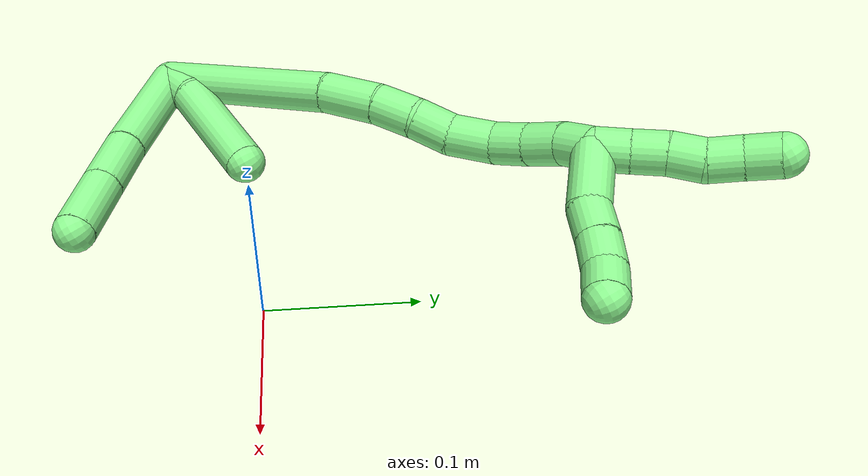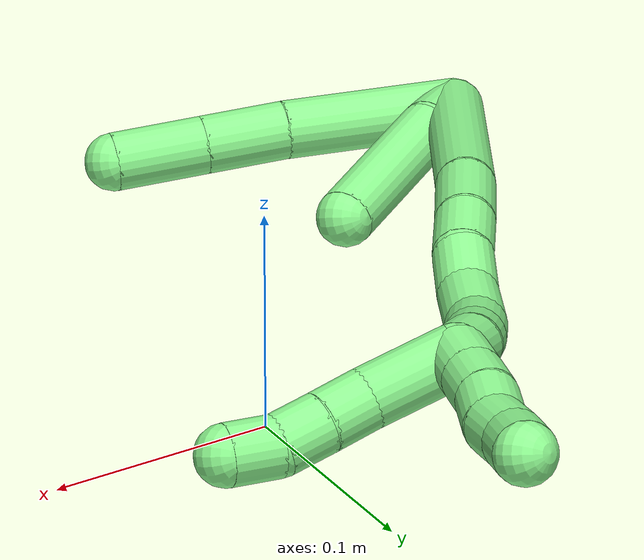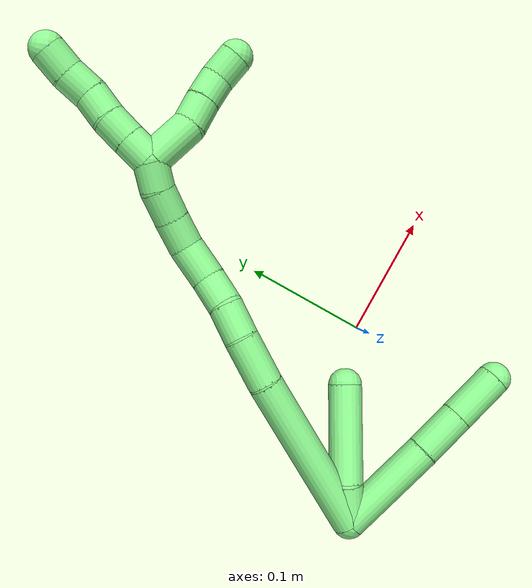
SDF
<sdf version="1.7">
 <world name="default">
  <model name="13">
   <static>0</static>
   <link name="13">
    <collision name="collision-cylinder-e_1_2_8">
     <pose>0.028145 0.013189 -0.020993 -2.58065 0.848641 -2.00632</pose>
     <geometry><cylinder><radius>0.0125</radius><length>0.075014</length></cylinder></geometry>
     <surface>
      <friction><ode><mu>1.16</mu><mu2>1.16</mu2><slip1>0</slip1><slip2>0</slip2></ode></friction>
      <contact><ode><kp>1e+06</kp><kd>1</kd><max_vel>0</max_vel><min_depth>0.001</min_depth></ode></contact>
     </surface>
    </collision>
    <visual name="visual-cylinder-e_1_2_8">
     <pose>0.028145 0.013189 -0.020993 -2.58065 0.848641 -2.00632</pose>
     <geometry><cylinder><radius>0.0125</radius><length>0.075014</length></cylinder></geometry>
     <material><ambient>0.564706 0.984314 0.572549 1</ambient></material>
    </visual>
    <collision name="collision-cylinder-e_2_8_9">
     <pose>0.069249 0.033447 -0.051996 -2.52669 0.813387 -1.87106</pose>
     <geometry><cylinder><radius>0.0125</radius><length>0.035672</length></cylinder></geometry>
     <surface>
      <friction><ode><mu>1.16</mu><mu2>1.16</mu2><slip1>0</slip1><slip2>0</slip2></ode></friction>
      <contact><ode><kp>1e+06</kp><kd>1</kd><max_vel>0</max_vel><min_depth>0.001</min_depth></ode></contact>
     </surface>
    </collision>
    <visual name="visual-cylinder-e_2_8_9">
     <pose>0.069249 0.033447 -0.051996 -2.52669 0.813387 -1.87106</pose>
     <geometry><cylinder><radius>0.0125</radius><length>0.035672</length></cylinder></geometry>
     <material><ambient>0.564706 0.984314 0.572549 1</ambient></material>
    </visual>
    <collision name="collision-cylinder-e_3_9_6">
     <pose>0.096479 0.048328 -0.073039 -2.52556 0.812407 -1.8679</pose>
     <geometry><cylinder><radius>0.0125</radius><length>0.039314</length></cylinder></geometry>
     <surface>
      <friction><ode><mu>1.16</mu><mu2>1.16</mu2><slip1>0</slip1><slip2>0</slip2></ode></friction>
      <contact><ode><kp>1e+06</kp><kd>1</kd><max_vel>0</max_vel><min_depth>0.001</min_depth></ode></contact>
     </surface>
    </collision>
    <visual name="visual-cylinder-e_3_9_6">
     <pose>0.096479 0.048328 -0.073039 -2.52556 0.812407 -1.8679</pose>
     <geometry><cylinder><radius>0.0125</radius><length>0.039314</length></cylinder></geometry>
     <material><ambient>0.564706 0.984314 0.572549 1</ambient></material>
    </visual>
    <collision name="collision-cylinder-e_1_2_10">
     <pose>0.010606 0.008301 0.003814 -1.14015 0.859779 -0.571748</pose>
     <geometry><cylinder><radius>0.0125</radius><length>0.027996</length></cylinder></geometry>
     <surface>
      <friction><ode><mu>1.16</mu><mu2>1.16</mu2><slip1>0</slip1><slip2>0</slip2></ode></friction>
      <contact><ode><kp>1e+06</kp><kd>1</kd><max_vel>0</max_vel><min_depth>0.001</min_depth></ode></contact>
     </surface>
    </collision>
    <visual name="visual-cylinder-e_1_2_10">
     <pose>0.010606 0.008301 0.003814 -1.14015 0.859779 -0.571748</pose>
     <geometry><cylinder><radius>0.0125</radius><length>0.027996</length></cylinder></geometry>
     <material><ambient>0.564706 0.984314 0.572549 1</ambient></material>
    </visual>
    <collision name="collision-cylinder-e_2_10_5">
     <pose>0.044915 0.043313 0.012195 -1.40142 0.718637 -0.613672</pose>
     <geometry><cylinder><radius>0.0125</radius><length>0.072004</length></cylinder></geometry>
     <surface>
      <friction><ode><mu>1.16</mu><mu2>1.16</mu2><slip1>0</slip1><slip2>0</slip2></ode></friction>
      <contact><ode><kp>1e+06</kp><kd>1</kd><max_vel>0</max_vel><min_depth>0.001</min_depth></ode></contact>
     </surface>
    </collision>
    <visual name="visual-cylinder-e_2_10_5">
     <pose>0.044915 0.043313 0.012195 -1.40142 0.718637 -0.613672</pose>
     <geometry><cylinder><radius>0.0125</radius><length>0.072004</length></cylinder></geometry>
     <material><ambient>0.564706 0.984314 0.572549 1</ambient></material>
    </visual>
    <collision name="collision-cylinder-e_1_2_11">
     <pose>0.034555 0.02901 0.04099 -0.615894 0.602707 -0.197082</pose>
     <geometry><cylinder><radius>0.0125</radius><length>0.121915</length></cylinder></geometry>
     <surface>
      <friction><ode><mu>1.16</mu><mu2>1.16</mu2><slip1>0</slip1><slip2>0</slip2></ode></friction>
      <contact><ode><kp>1e+06</kp><kd>1</kd><max_vel>0</max_vel><min_depth>0.001</min_depth></ode></contact>
     </surface>
    </collision>
    <visual name="visual-cylinder-e_1_2_11">
     <pose>0.034555 0.02901 0.04099 -0.615894 0.602707 -0.197082</pose>
     <geometry><cylinder><radius>0.0125</radius><length>0.121915</length></cylinder></geometry>
     <material><ambient>0.564706 0.984314 0.572549 1</ambient></material>
    </visual>
    <collision name="collision-cylinder-e_2_11_12">
     <pose>0.078873 0.068656 0.093052 -0.765338 0.566367 -0.233202</pose>
     <geometry><cylinder><radius>0.0125</radius><length>0.036388</length></cylinder></geometry>
     <surface>
      <friction><ode><mu>1.16</mu><mu2>1.16</mu2><slip1>0</slip1><slip2>0</slip2></ode></friction>
      <contact><ode><kp>1e+06</kp><kd>1</kd><max_vel>0</max_vel><min_depth>0.001</min_depth></ode></contact>
     </surface>
    </collision>
    <visual name="visual-cylinder-e_2_11_12">
     <pose>0.078873 0.068656 0.093052 -0.765338 0.566367 -0.233202</pose>
     <geometry><cylinder><radius>0.0125</radius><length>0.036388</length></cylinder></geometry>
     <material><ambient>0.564706 0.984314 0.572549 1</ambient></material>
    </visual>
    <collision name="collision-cylinder-e_3_12_13">
     <pose>0.094697 0.088168 0.111058 -0.90759 0.493736 -0.244605</pose>
     <geometry><cylinder><radius>0.0125</radius><length>0.025581</length></cylinder></geometry>
     <surface>
      <friction><ode><mu>1.16</mu><mu2>1.16</mu2><slip1>0</slip1><slip2>0</slip2></ode></friction>
      <contact><ode><kp>1e+06</kp><kd>1</kd><max_vel>0</max_vel><min_depth>0.001</min_depth></ode></contact>
     </surface>
    </collision>
    <visual name="visual-cylinder-e_3_12_13">
     <pose>0.094697 0.088168 0.111058 -0.90759 0.493736 -0.244605</pose>
     <geometry><cylinder><radius>0.0125</radius><length>0.025581</length></cylinder></geometry>
     <material><ambient>0.564706 0.984314 0.572549 1</ambient></material>
    </visual>
    <collision name="collision-cylinder-e_4_13_14">
     <pose>0.103919 0.10618 0.124352 -0.962661 0.276644 -0.145165</pose>
     <geometry><cylinder><radius>0.0125</radius><length>0.023144</length></cylinder></geometry>
     <surface>
      <friction><ode><mu>1.16</mu><mu2>1.16</mu2><slip1>0</slip1><slip2>0</slip2></ode></friction>
      <contact><ode><kp>1e+06</kp><kd>1</kd><max_vel>0</max_vel><min_depth>0.001</min_depth></ode></contact>
     </surface>
    </collision>
    <visual name="visual-cylinder-e_4_13_14">
     <pose>0.103919 0.10618 0.124352 -0.962661 0.276644 -0.145165</pose>
     <geometry><cylinder><radius>0.0125</radius><length>0.023144</length></cylinder></geometry>
     <material><ambient>0.564706 0.984314 0.572549 1</ambient></material>
    </visual>
    <collision name="collision-cylinder-e_5_14_15">
     <pose>0.113147 0.123526 0.140213 -0.712671 0.450107 -0.170018</pose>
     <geometry><cylinder><radius>0.0125</radius><length>0.027892</length></cylinder></geometry>
     <surface>
      <friction><ode><mu>1.16</mu><mu2>1.16</mu2><slip1>0</slip1><slip2>0</slip2></ode></friction>
      <contact><ode><kp>1e+06</kp><kd>1</kd><max_vel>0</max_vel><min_depth>0.001</min_depth></ode></contact>
     </surface>
    </collision>
    <visual name="visual-cylinder-e_5_14_15">
     <pose>0.113147 0.123526 0.140213 -0.712671 0.450107 -0.170018</pose>
     <geometry><cylinder><radius>0.0125</radius><length>0.027892</length></cylinder></geometry>
     <material><ambient>0.564706 0.984314 0.572549 1</ambient></material>
    </visual>
    <collision name="collision-cylinder-e_6_15_16">
     <pose>0.126591 0.136205 0.156906 -0.555888 0.716665 -0.212904</pose>
     <geometry><cylinder><radius>0.0125</radius><length>0.022459</length></cylinder></geometry>
     <surface>
      <friction><ode><mu>1.16</mu><mu2>1.16</mu2><slip1>0</slip1><slip2>0</slip2></ode></friction>
      <contact><ode><kp>1e+06</kp><kd>1</kd><max_vel>0</max_vel><min_depth>0.001</min_depth></ode></contact>
     </surface>
    </collision>
    <visual name="visual-cylinder-e_6_15_16">
     <pose>0.126591 0.136205 0.156906 -0.555888 0.716665 -0.212904</pose>
     <geometry><cylinder><radius>0.0125</radius><length>0.022459</length></cylinder></geometry>
     <material><ambient>0.564706 0.984314 0.572549 1</ambient></material>
    </visual>
    <collision name="collision-cylinder-e_7_16_17">
     <pose>0.142012 0.144309 0.171097 -0.479129 0.795228 -0.204451</pose>
     <geometry><cylinder><radius>0.0125</radius><length>0.022532</length></cylinder></geometry>
     <surface>
      <friction><ode><mu>1.16</mu><mu2>1.16</mu2><slip1>0</slip1><slip2>0</slip2></ode></friction>
      <contact><ode><kp>1e+06</kp><kd>1</kd><max_vel>0</max_vel><min_depth>0.001</min_depth></ode></contact>
     </surface>
    </collision>
    <visual name="visual-cylinder-e_7_16_17">
     <pose>0.142012 0.144309 0.171097 -0.479129 0.795228 -0.204451</pose>
     <geometry><cylinder><radius>0.0125</radius><length>0.022532</length></cylinder></geometry>
     <material><ambient>0.564706 0.984314 0.572549 1</ambient></material>
    </visual>
    <collision name="collision-cylinder-e_8_17_1">
     <pose>0.158031 0.152086 0.182584 -0.745299 0.917361 -0.381381</pose>
     <geometry><cylinder><radius>0.0125</radius><length>0.020089</length></cylinder></geometry>
     <surface>
      <friction><ode><mu>1.16</mu><mu2>1.16</mu2><slip1>0</slip1><slip2>0</slip2></ode></friction>
      <contact><ode><kp>1e+06</kp><kd>1</kd><max_vel>0</max_vel><min_depth>0.001</min_depth></ode></contact>
     </surface>
    </collision>
    <visual name="visual-cylinder-e_8_17_1">
     <pose>0.158031 0.152086 0.182584 -0.745299 0.917361 -0.381381</pose>
     <geometry><cylinder><radius>0.0125</radius><length>0.020089</length></cylinder></geometry>
     <material><ambient>0.564706 0.984314 0.572549 1</ambient></material>
    </visual>
    <collision name="collision-cylinder-e_1_1_18">
     <pose>0.169013 0.161484 0.19503 -0.583714 0.305405 -0.092409</pose>
     <geometry><cylinder><radius>0.0125</radius><length>0.02</length></cylinder></geometry>
     <surface>
      <friction><ode><mu>1.16</mu><mu2>1.16</mu2><slip1>0</slip1><slip2>0</slip2></ode></friction>
      <contact><ode><kp>1e+06</kp><kd>1</kd><max_vel>0</max_vel><min_depth>0.001</min_depth></ode></contact>
     </surface>
    </collision>
    <visual name="visual-cylinder-e_1_1_18">
     <pose>0.169013 0.161484 0.19503 -0.583714 0.305405 -0.092409</pose>
     <geometry><cylinder><radius>0.0125</radius><length>0.02</length></cylinder></geometry>
     <material><ambient>0.564706 0.984314 0.572549 1</ambient></material>
    </visual>
    <collision name="collision-cylinder-e_2_18_19">
     <pose>0.175477 0.17179 0.210896 -0.568345 0.352976 -0.104086</pose>
     <geometry><cylinder><radius>0.0125</radius><length>0.02</length></cylinder></geometry>
     <surface>
      <friction><ode><mu>1.16</mu><mu2>1.16</mu2><slip1>0</slip1><slip2>0</slip2></ode></friction>
      <contact><ode><kp>1e+06</kp><kd>1</kd><max_vel>0</max_vel><min_depth>0.001</min_depth></ode></contact>
     </surface>
    </collision>
    <visual name="visual-cylinder-e_2_18_19">
     <pose>0.175477 0.17179 0.210896 -0.568345 0.352976 -0.104086</pose>
     <geometry><cylinder><radius>0.0125</radius><length>0.02</length></cylinder></geometry>
     <material><ambient>0.564706 0.984314 0.572549 1</ambient></material>
    </visual>
    <collision name="collision-cylinder-e_3_19_20">
     <pose>0.18284 0.182928 0.22571 -0.722529 0.401344 -0.153414</pose>
     <geometry><cylinder><radius>0.0125</radius><length>0.02</length></cylinder></geometry>
     <surface>
      <friction><ode><mu>1.16</mu><mu2>1.16</mu2><slip1>0</slip1><slip2>0</slip2></ode></friction>
      <contact><ode><kp>1e+06</kp><kd>1</kd><max_vel>0</max_vel><min_depth>0.001</min_depth></ode></contact>
     </surface>
    </collision>
    <visual name="visual-cylinder-e_3_19_20">
     <pose>0.18284 0.182928 0.22571 -0.722529 0.401344 -0.153414</pose>
     <geometry><cylinder><radius>0.0125</radius><length>0.02</length></cylinder></geometry>
     <material><ambient>0.564706 0.984314 0.572549 1</ambient></material>
    </visual>
    <collision name="collision-cylinder-e_4_20_21">
     <pose>0.19013 0.192891 0.241191 -0.424383 0.345136 -0.075066</pose>
     <geometry><cylinder><radius>0.0125</radius><length>0.02</length></cylinder></geometry>
     <surface>
      <friction><ode><mu>1.16</mu><mu2>1.16</mu2><slip1>0</slip1><slip2>0</slip2></ode></friction>
      <contact><ode><kp>1e+06</kp><kd>1</kd><max_vel>0</max_vel><min_depth>0.001</min_depth></ode></contact>
     </surface>
    </collision>
    <visual name="visual-cylinder-e_4_20_21">
     <pose>0.19013 0.192891 0.241191 -0.424383 0.345136 -0.075066</pose>
     <geometry><cylinder><radius>0.0125</radius><length>0.02</length></cylinder></geometry>
     <material><ambient>0.564706 0.984314 0.572549 1</ambient></material>
    </visual>
    <collision name="collision-cylinder-e_5_21_4">
     <pose>0.198472 0.200384 0.25766 -0.429853 0.518873 -0.115751</pose>
     <geometry><cylinder><radius>0.0125</radius><length>0.02</length></cylinder></geometry>
     <surface>
      <friction><ode><mu>1.16</mu><mu2>1.16</mu2><slip1>0</slip1><slip2>0</slip2></ode></friction>
      <contact><ode><kp>1e+06</kp><kd>1</kd><max_vel>0</max_vel><min_depth>0.001</min_depth></ode></contact>
     </surface>
    </collision>
    <visual name="visual-cylinder-e_5_21_4">
     <pose>0.198472 0.200384 0.25766 -0.429853 0.518873 -0.115751</pose>
     <geometry><cylinder><radius>0.0125</radius><length>0.02</length></cylinder></geometry>
     <material><ambient>0.564706 0.984314 0.572549 1</ambient></material>
    </visual>
    <collision name="collision-cylinder-e_1_1_22">
     <pose>0.17634 0.167794 0.175772 -2.34454 0.56864 -1.21346</pose>
     <geometry><cylinder><radius>0.0125</radius><length>0.03838</length></cylinder></geometry>
     <surface>
      <friction><ode><mu>1.16</mu><mu2>1.16</mu2><slip1>0</slip1><slip2>0</slip2></ode></friction>
      <contact><ode><kp>1e+06</kp><kd>1</kd><max_vel>0</max_vel><min_depth>0.001</min_depth></ode></contact>
     </surface>
    </collision>
    <visual name="visual-cylinder-e_1_1_22">
     <pose>0.17634 0.167794 0.175772 -2.34454 0.56864 -1.21346</pose>
     <geometry><cylinder><radius>0.0125</radius><length>0.03838</length></cylinder></geometry>
     <material><ambient>0.564706 0.984314 0.572549 1</ambient></material>
    </visual>
    <collision name="collision-cylinder-e_2_22_23">
     <pose>0.193971 0.186101 0.161193 -2.02357 0.771986 -1.1522</pose>
     <geometry><cylinder><radius>0.0125</radius><length>0.020923</length></cylinder></geometry>
     <surface>
      <friction><ode><mu>1.16</mu><mu2>1.16</mu2><slip1>0</slip1><slip2>0</slip2></ode></friction>
      <contact><ode><kp>1e+06</kp><kd>1</kd><max_vel>0</max_vel><min_depth>0.001</min_depth></ode></contact>
     </surface>
    </collision>
    <visual name="visual-cylinder-e_2_22_23">
     <pose>0.193971 0.186101 0.161193 -2.02357 0.771986 -1.1522</pose>
     <geometry><cylinder><radius>0.0125</radius><length>0.020923</length></cylinder></geometry>
     <material><ambient>0.564706 0.984314 0.572549 1</ambient></material>
    </visual>
    <collision name="collision-cylinder-e_3_23_24">
     <pose>0.208033 0.199228 0.154136 -2.10494 0.739218 -1.19334</pose>
     <geometry><cylinder><radius>0.0125</radius><length>0.020081</length></cylinder></geometry>
     <surface>
      <friction><ode><mu>1.16</mu><mu2>1.16</mu2><slip1>0</slip1><slip2>0</slip2></ode></friction>
      <contact><ode><kp>1e+06</kp><kd>1</kd><max_vel>0</max_vel><min_depth>0.001</min_depth></ode></contact>
     </surface>
    </collision>
    <visual name="visual-cylinder-e_3_23_24">
     <pose>0.208033 0.199228 0.154136 -2.10494 0.739218 -1.19334</pose>
     <geometry><cylinder><radius>0.0125</radius><length>0.020081</length></cylinder></geometry>
     <material><ambient>0.564706 0.984314 0.572549 1</ambient></material>
    </visual>
    <collision name="collision-cylinder-e_4_24_3">
     <pose>0.223006 0.209643 0.1456 -2.43901 0.921242 -1.86931</pose>
     <geometry><cylinder><radius>0.0125</radius><length>0.020617</length></cylinder></geometry>
     <surface>
      <friction><ode><mu>1.16</mu><mu2>1.16</mu2><slip1>0</slip1><slip2>0</slip2></ode></friction>
      <contact><ode><kp>1e+06</kp><kd>1</kd><max_vel>0</max_vel><min_depth>0.001</min_depth></ode></contact>
     </surface>
    </collision>
    <visual name="visual-cylinder-e_4_24_3">
     <pose>0.223006 0.209643 0.1456 -2.43901 0.921242 -1.86931</pose>
     <geometry><cylinder><radius>0.0125</radius><length>0.020617</length></cylinder></geometry>
     <material><ambient>0.564706 0.984314 0.572549 1</ambient></material>
    </visual>
    <collision name="collision-sphere-3">
     <pose>0.231215 0.213672 0.140842 0 -0 0</pose>
     <geometry><sphere><radius>0.0125</radius></sphere></geometry>
     <surface>
      <friction><ode><mu>1.16</mu><mu2>1.16</mu2><slip1>0</slip1><slip2>0</slip2></ode></friction>
      <contact><ode><kp>1e+06</kp><kd>1</kd><max_vel>0</max_vel><min_depth>0.001</min_depth></ode></contact>
     </surface>
    </collision>
    <visual name="visual-sphere-3">
     <pose>0.231215 0.213672 0.140842 0 -0 0</pose>
     <geometry><sphere><radius>0.0125</radius></sphere></geometry>
     <material><ambient>0.564706 0.984314 0.572549 1</ambient></material>
    </visual>
    <collision name="collision-sphere-24">
     <pose>0.214797 0.205614 0.150359 0 -0 0</pose>
     <geometry><sphere><radius>0.0125</radius></sphere></geometry>
     <surface>
      <friction><ode><mu>1.16</mu><mu2>1.16</mu2><slip1>0</slip1><slip2>0</slip2></ode></friction>
      <contact><ode><kp>1e+06</kp><kd>1</kd><max_vel>0</max_vel><min_depth>0.001</min_depth></ode></contact>
     </surface>
    </collision>
    <visual name="visual-sphere-24">
     <pose>0.214797 0.205614 0.150359 0 -0 0</pose>
     <geometry><sphere><radius>0.0125</radius></sphere></geometry>
     <material><ambient>0.564706 0.984314 0.572549 1</ambient></material>
    </visual>
    <collision name="collision-sphere-23">
     <pose>0.201268 0.192841 0.157913 0 -0 0</pose>
     <geometry><sphere><radius>0.0125</radius></sphere></geometry>
     <surface>
      <friction><ode><mu>1.16</mu><mu2>1.16</mu2><slip1>0</slip1><slip2>0</slip2></ode></friction>
      <contact><ode><kp>1e+06</kp><kd>1</kd><max_vel>0</max_vel><min_depth>0.001</min_depth></ode></contact>
     </surface>
    </collision>
    <visual name="visual-sphere-23">
     <pose>0.201268 0.192841 0.157913 0 -0 0</pose>
     <geometry><sphere><radius>0.0125</radius></sphere></geometry>
     <material><ambient>0.564706 0.984314 0.572549 1</ambient></material>
    </visual>
    <collision name="collision-sphere-22">
     <pose>0.186673 0.17936 0.164472 0 -0 0</pose>
     <geometry><sphere><radius>0.0125</radius></sphere></geometry>
     <surface>
      <friction><ode><mu>1.16</mu><mu2>1.16</mu2><slip1>0</slip1><slip2>0</slip2></ode></friction>
      <contact><ode><kp>1e+06</kp><kd>1</kd><max_vel>0</max_vel><min_depth>0.001</min_depth></ode></contact>
     </surface>
    </collision>
    <visual name="visual-sphere-22">
     <pose>0.186673 0.17936 0.164472 0 -0 0</pose>
     <geometry><sphere><radius>0.0125</radius></sphere></geometry>
     <material><ambient>0.564706 0.984314 0.572549 1</ambient></material>
    </visual>
    <collision name="collision-sphere-4">
     <pose>0.203431 0.204003 0.265554 0 -0 0</pose>
     <geometry><sphere><radius>0.0125</radius></sphere></geometry>
     <surface>
      <friction><ode><mu>1.16</mu><mu2>1.16</mu2><slip1>0</slip1><slip2>0</slip2></ode></friction>
      <contact><ode><kp>1e+06</kp><kd>1</kd><max_vel>0</max_vel><min_depth>0.001</min_depth></ode></contact>
     </surface>
    </collision>
    <visual name="visual-sphere-4">
     <pose>0.203431 0.204003 0.265554 0 -0 0</pose>
     <geometry><sphere><radius>0.0125</radius></sphere></geometry>
     <material><ambient>0.564706 0.984314 0.572549 1</ambient></material>
    </visual>
    <collision name="collision-sphere-21">
     <pose>0.193513 0.196765 0.249766 0 -0 0</pose>
     <geometry><sphere><radius>0.0125</radius></sphere></geometry>
     <surface>
      <friction><ode><mu>1.16</mu><mu2>1.16</mu2><slip1>0</slip1><slip2>0</slip2></ode></friction>
      <contact><ode><kp>1e+06</kp><kd>1</kd><max_vel>0</max_vel><min_depth>0.001</min_depth></ode></contact>
     </surface>
    </collision>
    <visual name="visual-sphere-21">
     <pose>0.193513 0.196765 0.249766 0 -0 0</pose>
     <geometry><sphere><radius>0.0125</radius></sphere></geometry>
     <material><ambient>0.564706 0.984314 0.572549 1</ambient></material>
    </visual>
    <collision name="collision-sphere-20">
     <pose>0.186747 0.189016 0.232615 0 -0 0</pose>
     <geometry><sphere><radius>0.0125</radius></sphere></geometry>
     <surface>
      <friction><ode><mu>1.16</mu><mu2>1.16</mu2><slip1>0</slip1><slip2>0</slip2></ode></friction>
      <contact><ode><kp>1e+06</kp><kd>1</kd><max_vel>0</max_vel><min_depth>0.001</min_depth></ode></contact>
     </surface>
    </collision>
    <visual name="visual-sphere-20">
     <pose>0.186747 0.189016 0.232615 0 -0 0</pose>
     <geometry><sphere><radius>0.0125</radius></sphere></geometry>
     <material><ambient>0.564706 0.984314 0.572549 1</ambient></material>
    </visual>
    <collision name="collision-sphere-5">
     <pose>0.068617 0.070024 0.016763 0 -0 0</pose>
     <geometry><sphere><radius>0.0125</radius></sphere></geometry>
     <surface>
      <friction><ode><mu>1.16</mu><mu2>1.16</mu2><slip1>0</slip1><slip2>0</slip2></ode></friction>
      <contact><ode><kp>1e+06</kp><kd>1</kd><max_vel>0</max_vel><min_depth>0.001</min_depth></ode></contact>
     </surface>
    </collision>
    <visual name="visual-sphere-5">
     <pose>0.068617 0.070024 0.016763 0 -0 0</pose>
     <geometry><sphere><radius>0.0125</radius></sphere></geometry>
     <material><ambient>0.564706 0.984314 0.572549 1</ambient></material>
    </visual>
    <collision name="collision-sphere-10">
     <pose>0.021212 0.016602 0.007627 0 -0 0</pose>
     <geometry><sphere><radius>0.0125</radius></sphere></geometry>
     <surface>
      <friction><ode><mu>1.16</mu><mu2>1.16</mu2><slip1>0</slip1><slip2>0</slip2></ode></friction>
      <contact><ode><kp>1e+06</kp><kd>1</kd><max_vel>0</max_vel><min_depth>0.001</min_depth></ode></contact>
     </surface>
    </collision>
    <visual name="visual-sphere-10">
     <pose>0.021212 0.016602 0.007627 0 -0 0</pose>
     <geometry><sphere><radius>0.0125</radius></sphere></geometry>
     <material><ambient>0.564706 0.984314 0.572549 1</ambient></material>
    </visual>
    <collision name="collision-sphere-6">
     <pose>0.110749 0.056139 -0.084073 0 -0 0</pose>
     <geometry><sphere><radius>0.0125</radius></sphere></geometry>
     <surface>
      <friction><ode><mu>1.16</mu><mu2>1.16</mu2><slip1>0</slip1><slip2>0</slip2></ode></friction>
      <contact><ode><kp>1e+06</kp><kd>1</kd><max_vel>0</max_vel><min_depth>0.001</min_depth></ode></contact>
     </surface>
    </collision>
    <visual name="visual-sphere-6">
     <pose>0.110749 0.056139 -0.084073 0 -0 0</pose>
     <geometry><sphere><radius>0.0125</radius></sphere></geometry>
     <material><ambient>0.564706 0.984314 0.572549 1</ambient></material>
    </visual>
    <collision name="collision-sphere-9">
     <pose>0.082209 0.040516 -0.062005 0 -0 0</pose>
     <geometry><sphere><radius>0.0125</radius></sphere></geometry>
     <surface>
      <friction><ode><mu>1.16</mu><mu2>1.16</mu2><slip1>0</slip1><slip2>0</slip2></ode></friction>
      <contact><ode><kp>1e+06</kp><kd>1</kd><max_vel>0</max_vel><min_depth>0.001</min_depth></ode></contact>
     </surface>
    </collision>
    <visual name="visual-sphere-9">
     <pose>0.082209 0.040516 -0.062005 0 -0 0</pose>
     <geometry><sphere><radius>0.0125</radius></sphere></geometry>
     <material><ambient>0.564706 0.984314 0.572549 1</ambient></material>
    </visual>
    <collision name="collision-sphere-2">
     <geometry><sphere><radius>0.0125</radius></sphere></geometry>
     <surface>
      <friction><ode><mu>1.16</mu><mu2>1.16</mu2><slip1>0</slip1><slip2>0</slip2></ode></friction>
      <contact><ode><kp>1e+06</kp><kd>1</kd><max_vel>0</max_vel><min_depth>0.001</min_depth></ode></contact>
     </surface>
    </collision>
    <visual name="visual-sphere-2">
     <geometry><sphere><radius>0.0125</radius></sphere></geometry>
     <material><ambient>0.564706 0.984314 0.572549 1</ambient></material>
    </visual>
    <collision name="collision-sphere-19">
     <pose>0.178934 0.176841 0.218804 0 -0 0</pose>
     <geometry><sphere><radius>0.0125</radius></sphere></geometry>
     <surface>
      <friction><ode><mu>1.16</mu><mu2>1.16</mu2><slip1>0</slip1><slip2>0</slip2></ode></friction>
      <contact><ode><kp>1e+06</kp><kd>1</kd><max_vel>0</max_vel><min_depth>0.001</min_depth></ode></contact>
     </surface>
    </collision>
    <visual name="visual-sphere-19">
     <pose>0.178934 0.176841 0.218804 0 -0 0</pose>
     <geometry><sphere><radius>0.0125</radius></sphere></geometry>
     <material><ambient>0.564706 0.984314 0.572549 1</ambient></material>
    </visual>
    <collision name="collision-sphere-8">
     <pose>0.05629 0.026378 -0.041986 0 -0 0</pose>
     <geometry><sphere><radius>0.0125</radius></sphere></geometry>
     <surface>
      <friction><ode><mu>1.16</mu><mu2>1.16</mu2><slip1>0</slip1><slip2>0</slip2></ode></friction>
      <contact><ode><kp>1e+06</kp><kd>1</kd><max_vel>0</max_vel><min_depth>0.001</min_depth></ode></contact>
     </surface>
    </collision>
    <visual name="visual-sphere-8">
     <pose>0.05629 0.026378 -0.041986 0 -0 0</pose>
     <geometry><sphere><radius>0.0125</radius></sphere></geometry>
     <material><ambient>0.564706 0.984314 0.572549 1</ambient></material>
    </visual>
    <collision name="collision-sphere-11">
     <pose>0.069111 0.05802 0.08198 0 -0 0</pose>
     <geometry><sphere><radius>0.0125</radius></sphere></geometry>
     <surface>
      <friction><ode><mu>1.16</mu><mu2>1.16</mu2><slip1>0</slip1><slip2>0</slip2></ode></friction>
      <contact><ode><kp>1e+06</kp><kd>1</kd><max_vel>0</max_vel><min_depth>0.001</min_depth></ode></contact>
     </surface>
    </collision>
    <visual name="visual-sphere-11">
     <pose>0.069111 0.05802 0.08198 0 -0 0</pose>
     <geometry><sphere><radius>0.0125</radius></sphere></geometry>
     <material><ambient>0.564706 0.984314 0.572549 1</ambient></material>
    </visual>
    <collision name="collision-sphere-12">
     <pose>0.088635 0.079293 0.104124 0 -0 0</pose>
     <geometry><sphere><radius>0.0125</radius></sphere></geometry>
     <surface>
      <friction><ode><mu>1.16</mu><mu2>1.16</mu2><slip1>0</slip1><slip2>0</slip2></ode></friction>
      <contact><ode><kp>1e+06</kp><kd>1</kd><max_vel>0</max_vel><min_depth>0.001</min_depth></ode></contact>
     </surface>
    </collision>
    <visual name="visual-sphere-12">
     <pose>0.088635 0.079293 0.104124 0 -0 0</pose>
     <geometry><sphere><radius>0.0125</radius></sphere></geometry>
     <material><ambient>0.564706 0.984314 0.572549 1</ambient></material>
    </visual>
    <collision name="collision-sphere-13">
     <pose>0.100759 0.097044 0.117992 0 -0 0</pose>
     <geometry><sphere><radius>0.0125</radius></sphere></geometry>
     <surface>
      <friction><ode><mu>1.16</mu><mu2>1.16</mu2><slip1>0</slip1><slip2>0</slip2></ode></friction>
      <contact><ode><kp>1e+06</kp><kd>1</kd><max_vel>0</max_vel><min_depth>0.001</min_depth></ode></contact>
     </surface>
    </collision>
    <visual name="visual-sphere-13">
     <pose>0.100759 0.097044 0.117992 0 -0 0</pose>
     <geometry><sphere><radius>0.0125</radius></sphere></geometry>
     <material><ambient>0.564706 0.984314 0.572549 1</ambient></material>
    </visual>
    <collision name="collision-sphere-14">
     <pose>0.10708 0.115316 0.130712 0 -0 0</pose>
     <geometry><sphere><radius>0.0125</radius></sphere></geometry>
     <surface>
      <friction><ode><mu>1.16</mu><mu2>1.16</mu2><slip1>0</slip1><slip2>0</slip2></ode></friction>
      <contact><ode><kp>1e+06</kp><kd>1</kd><max_vel>0</max_vel><min_depth>0.001</min_depth></ode></contact>
     </surface>
    </collision>
    <visual name="visual-sphere-14">
     <pose>0.10708 0.115316 0.130712 0 -0 0</pose>
     <geometry><sphere><radius>0.0125</radius></sphere></geometry>
     <material><ambient>0.564706 0.984314 0.572549 1</ambient></material>
    </visual>
    <collision name="collision-sphere-15">
     <pose>0.119215 0.131737 0.149714 0 -0 0</pose>
     <geometry><sphere><radius>0.0125</radius></sphere></geometry>
     <surface>
      <friction><ode><mu>1.16</mu><mu2>1.16</mu2><slip1>0</slip1><slip2>0</slip2></ode></friction>
      <contact><ode><kp>1e+06</kp><kd>1</kd><max_vel>0</max_vel><min_depth>0.001</min_depth></ode></contact>
     </surface>
    </collision>
    <visual name="visual-sphere-15">
     <pose>0.119215 0.131737 0.149714 0 -0 0</pose>
     <geometry><sphere><radius>0.0125</radius></sphere></geometry>
     <material><ambient>0.564706 0.984314 0.572549 1</ambient></material>
    </visual>
    <collision name="collision-sphere-16">
     <pose>0.133967 0.140673 0.164098 0 -0 0</pose>
     <geometry><sphere><radius>0.0125</radius></sphere></geometry>
     <surface>
      <friction><ode><mu>1.16</mu><mu2>1.16</mu2><slip1>0</slip1><slip2>0</slip2></ode></friction>
      <contact><ode><kp>1e+06</kp><kd>1</kd><max_vel>0</max_vel><min_depth>0.001</min_depth></ode></contact>
     </surface>
    </collision>
    <visual name="visual-sphere-16">
     <pose>0.133967 0.140673 0.164098 0 -0 0</pose>
     <geometry><sphere><radius>0.0125</radius></sphere></geometry>
     <material><ambient>0.564706 0.984314 0.572549 1</ambient></material>
    </visual>
    <collision name="collision-sphere-17">
     <pose>0.150056 0.147945 0.178097 0 -0 0</pose>
     <geometry><sphere><radius>0.0125</radius></sphere></geometry>
     <surface>
      <friction><ode><mu>1.16</mu><mu2>1.16</mu2><slip1>0</slip1><slip2>0</slip2></ode></friction>
      <contact><ode><kp>1e+06</kp><kd>1</kd><max_vel>0</max_vel><min_depth>0.001</min_depth></ode></contact>
     </surface>
    </collision>
    <visual name="visual-sphere-17">
     <pose>0.150056 0.147945 0.178097 0 -0 0</pose>
     <geometry><sphere><radius>0.0125</radius></sphere></geometry>
     <material><ambient>0.564706 0.984314 0.572549 1</ambient></material>
    </visual>
    <collision name="collision-sphere-1">
     <pose>0.166006 0.156227 0.187072 0 -0 0</pose>
     <geometry><sphere><radius>0.0125</radius></sphere></geometry>
     <surface>
      <friction><ode><mu>1.16</mu><mu2>1.16</mu2><slip1>0</slip1><slip2>0</slip2></ode></friction>
      <contact><ode><kp>1e+06</kp><kd>1</kd><max_vel>0</max_vel><min_depth>0.001</min_depth></ode></contact>
     </surface>
    </collision>
    <visual name="visual-sphere-1">
     <pose>0.166006 0.156227 0.187072 0 -0 0</pose>
     <geometry><sphere><radius>0.0125</radius></sphere></geometry>
     <material><ambient>0.564706 0.984314 0.572549 1</ambient></material>
    </visual>
    <collision name="collision-sphere-18">
     <pose>0.17202 0.16674 0.202988 0 -0 0</pose>
     <geometry><sphere><radius>0.0125</radius></sphere></geometry>
     <surface>
      <friction><ode><mu>1.16</mu><mu2>1.16</mu2><slip1>0</slip1><slip2>0</slip2></ode></friction>
      <contact><ode><kp>1e+06</kp><kd>1</kd><max_vel>0</max_vel><min_depth>0.001</min_depth></ode></contact>
     </surface>
    </collision>
    <visual name="visual-sphere-18">
     <pose>0.17202 0.16674 0.202988 0 -0 0</pose>
     <geometry><sphere><radius>0.0125</radius></sphere></geometry>
     <material><ambient>0.564706 0.984314 0.572549 1</ambient></material>
    </visual>
    <inertial>
     <pose>0.098812 0.090451 0.083426 0 -0 0</pose>
     <mass>0.75</mass>
     <inertia>
      <ixx>0.000111</ixx>
      <ixy>0</ixy>
      <ixz>0</ixz>
      <iyy>0.000159</iyy>
      <iyz>0</iyz>
      <izz>-0.000296</izz>
     </inertia>
    </inertial>
   </link>
   <pose>-0.127562 -0.054873 0.093409 -1.14569 -0.607569 0.070123</pose>
  </model>
 </world>
</sdf>
